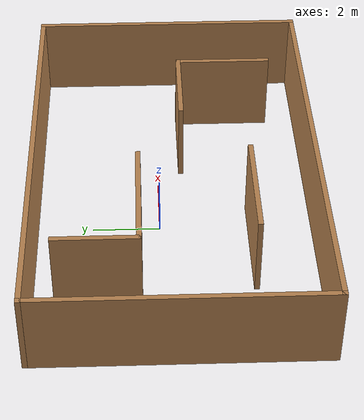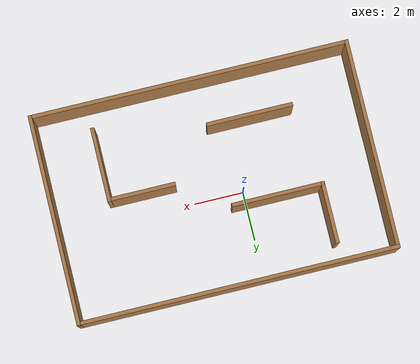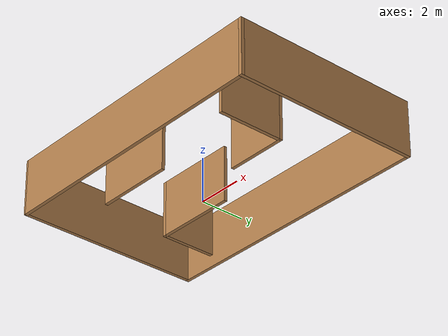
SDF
<?xml version='1.0'?>
<sdf version='1.7'>
  <model name='walls'>
    <pose>1.12026 -0.453595 0 0 -0 0</pose>
    <link name='Wall_13'>
      <collision name='Wall_13_Collision'>
        <geometry>
          <box>
            <size>13 0.15 2.5</size>
          </box>
        </geometry>
        <pose>0 0 1.25 0 -0 0</pose>
      </collision>
      <visual name='Wall_13_Visual'>
        <pose>0 0 1.25 0 -0 0</pose>
        <geometry>
          <box>
            <size>13 0.15 2.5</size>
          </box>
        </geometry>
        <material>
          <script>
            <uri>file://media/materials/scripts/gazebo.material</uri>
            <name>Gazebo/Wood</name>
          </script>
          <ambient>1 1 1 1</ambient>
        </material>
        <meta>
          <layer>0</layer>
        </meta>
      </visual>
      <pose>0 4.175 0 0 -0 0</pose>
    </link>
    <link name='Wall_18'>
      <collision name='Wall_18_Collision'>
        <geometry>
          <box>
            <size>8.5 0.15 2.5</size>
          </box>
        </geometry>
        <pose>0 0 1.25 0 -0 0</pose>
      </collision>
      <visual name='Wall_18_Visual'>
        <pose>0 0 1.25 0 -0 0</pose>
        <geometry>
          <box>
            <size>8.5 0.15 2.5</size>
          </box>
        </geometry>
        <material>
          <script>
            <uri>file://media/materials/scripts/gazebo.material</uri>
            <name>Gazebo/Wood</name>
          </script>
          <ambient>1 1 1 1</ambient>
        </material>
        <meta>
          <layer>0</layer>
        </meta>
      </visual>
      <pose>-6.425 -0 0 0 -0 -1.5708</pose>
    </link>
    <link name='Wall_19'>
      <collision name='Wall_19_Collision'>
        <geometry>
          <box>
            <size>13 0.15 2.5</size>
          </box>
        </geometry>
        <pose>0 0 1.25 0 -0 0</pose>
      </collision>
      <visual name='Wall_19_Visual'>
        <pose>0 0 1.25 0 -0 0</pose>
        <geometry>
          <box>
            <size>13 0.15 2.5</size>
          </box>
        </geometry>
        <material>
          <script>
            <uri>file://media/materials/scripts/gazebo.material</uri>
            <name>Gazebo/Wood</name>
          </script>
          <ambient>1 1 1 1</ambient>
        </material>
        <meta>
          <layer>0</layer>
        </meta>
      </visual>
      <pose>0 -4.175 0 0 -0 0</pose>
    </link>
    <link name='Wall_21'>
      <collision name='Wall_21_Collision'>
        <geometry>
          <box>
            <size>8.5 0.15 2.5</size>
          </box>
        </geometry>
        <pose>0 0 1.25 0 -0 0</pose>
      </collision>
      <visual name='Wall_21_Visual'>
        <pose>0 0 1.25 0 -0 0</pose>
        <geometry>
          <box>
            <size>8.5 0.15 2.5</size>
          </box>
        </geometry>
        <material>
          <script>
            <uri>file://media/materials/scripts/gazebo.material</uri>
            <name>Gazebo/Wood</name>
          </script>
          <ambient>1 1 1 1</ambient>
        </material>
        <meta>
          <layer>0</layer>
        </meta>
      </visual>
      <pose>6.425 -0 0 0 -0 -1.5708</pose>
    </link>
    <link name='Wall_23'>
      <collision name='Wall_23_Collision'>
        <geometry>
          <box>
            <size>3 0.15 2.5</size>
          </box>
        </geometry>
        <pose>0 0 1.25 0 -0 0</pose>
      </collision>
      <visual name='Wall_23_Visual'>
        <pose>0 0 1.25 0 -0 0</pose>
        <geometry>
          <box>
            <size>3 0.15 2.5</size>
          </box>
        </geometry>
        <material>
          <script>
            <uri>file://media/materials/scripts/gazebo.material</uri>
            <name>Gazebo/Wood</name>
          </script>
          <ambient>1 1 1 1</ambient>
        </material>
        <meta>
          <layer>0</layer>
        </meta>
      </visual>
      <pose>4.14643 -1.69584 0 0 -0 1.5708</pose>
    </link>
    <link name='Wall_24'>
      <collision name='Wall_24_Collision'>
        <geometry>
          <box>
            <size>2.75 0.15 2.5</size>
          </box>
        </geometry>
        <pose>0 0 1.25 0 -0 0</pose>
      </collision>
      <visual name='Wall_24_Visual'>
        <pose>0 0 1.25 0 -0 0</pose>
        <geometry>
          <box>
            <size>2.75 0.15 2.5</size>
          </box>
        </geometry>
        <material>
          <script>
            <uri>file://media/materials/scripts/gazebo.material</uri>
            <name>Gazebo/Wood</name>
          </script>
          <ambient>1 1 1 1</ambient>
        </material>
        <meta>
          <layer>0</layer>
        </meta>
      </visual>
      <pose>2.84643 -0.270838 0 0 -0 3.14159</pose>
    </link>
    <link name='Wall_26'>
      <collision name='Wall_26_Collision'>
        <geometry>
          <box>
            <size>2.5 0.15 2.5</size>
          </box>
        </geometry>
        <pose>0 0 1.25 0 -0 0</pose>
      </collision>
      <visual name='Wall_26_Visual'>
        <pose>0 0 1.25 0 -0 0</pose>
        <geometry>
          <box>
            <size>2.5 0.15 2.5</size>
          </box>
        </geometry>
        <material>
          <script>
            <uri>file://media/materials/scripts/gazebo.material</uri>
            <name>Gazebo/Wood</name>
          </script>
          <ambient>1 1 1 1</ambient>
        </material>
        <meta>
          <layer>0</layer>
        </meta>
      </visual>
      <pose>-4.15576 2.24741 0 0 -0 -1.5708</pose>
    </link>
    <link name='Wall_27'>
      <collision name='Wall_27_Collision'>
        <geometry>
          <box>
            <size>3.75 0.15 2.5</size>
          </box>
        </geometry>
        <pose>0 0 1.25 0 -0 0</pose>
      </collision>
      <visual name='Wall_27_Visual'>
        <pose>0 0 1.25 0 -0 0</pose>
        <geometry>
          <box>
            <size>3.75 0.15 2.5</size>
          </box>
        </geometry>
        <material>
          <script>
            <uri>file://media/materials/scripts/gazebo.material</uri>
            <name>Gazebo/Wood</name>
          </script>
          <ambient>1 1 1 1</ambient>
        </material>
        <meta>
          <layer>0</layer>
        </meta>
      </visual>
      <pose>-2.35576 1.07241 0 0 -0 0</pose>
    </link>
    <link name='Wall_29'>
      <collision name='Wall_29_Collision'>
        <geometry>
          <box>
            <size>3.5 0.15 2.5</size>
          </box>
        </geometry>
        <pose>0 0 1.25 0 -0 0</pose>
      </collision>
      <visual name='Wall_29_Visual'>
        <pose>0 0 1.25 0 -0 0</pose>
        <geometry>
          <box>
            <size>3.5 0.15 2.5</size>
          </box>
        </geometry>
        <material>
          <script>
            <uri>file://media/materials/scripts/gazebo.material</uri>
            <name>Gazebo/Wood</name>
          </script>
          <ambient>1 1 1 1</ambient>
        </material>
        <meta>
          <layer>0</layer>
        </meta>
      </visual>
      <pose>-2.01315 -2.25844 0 0 -0 0</pose>
    </link>
    <static>1</static>
  </model>
</sdf>
